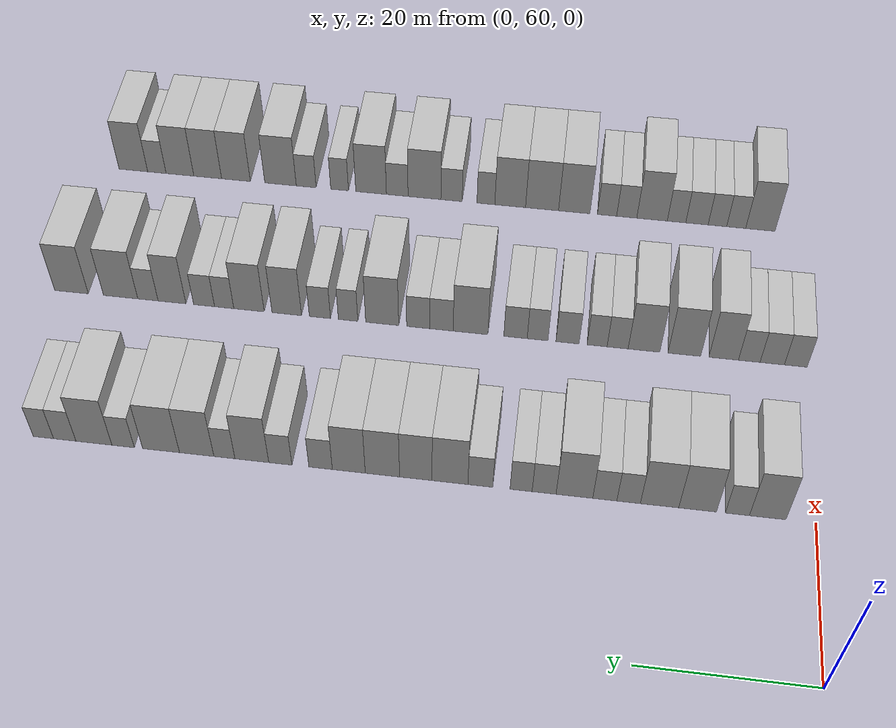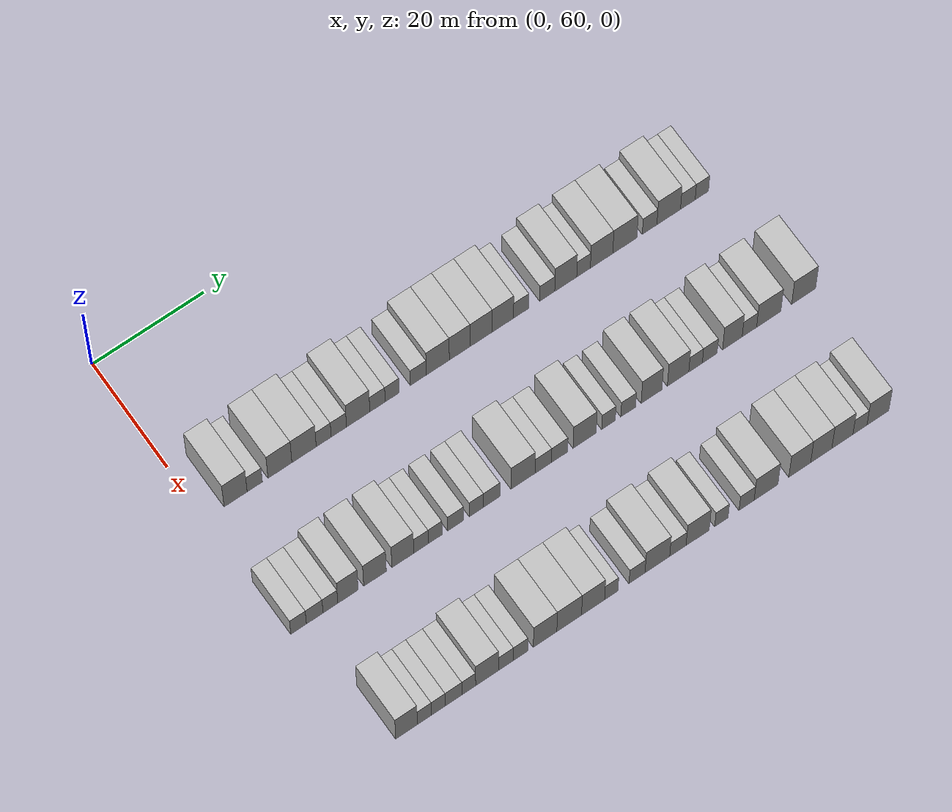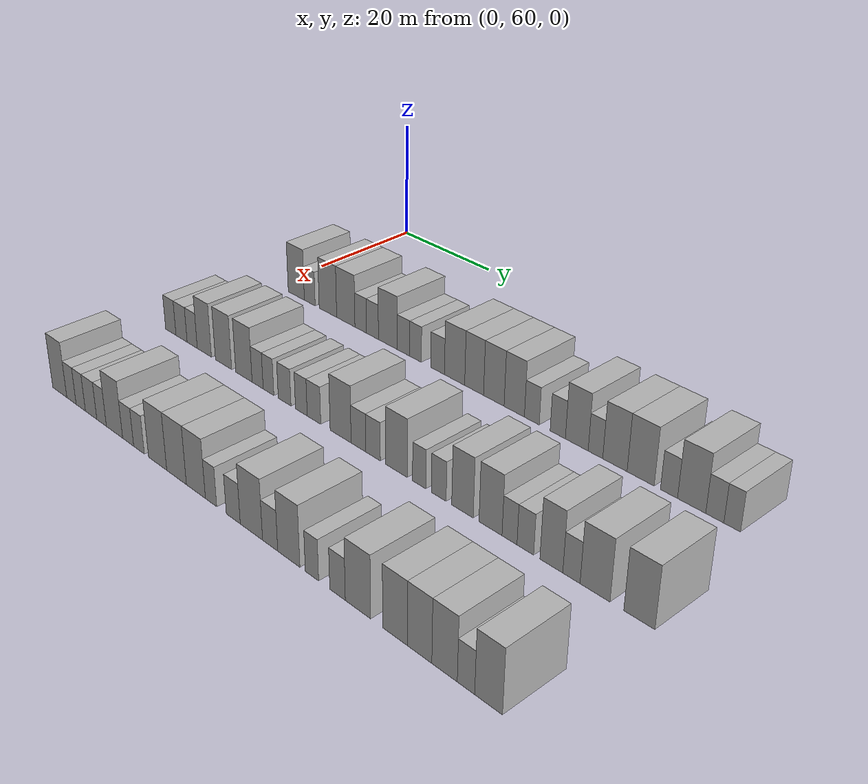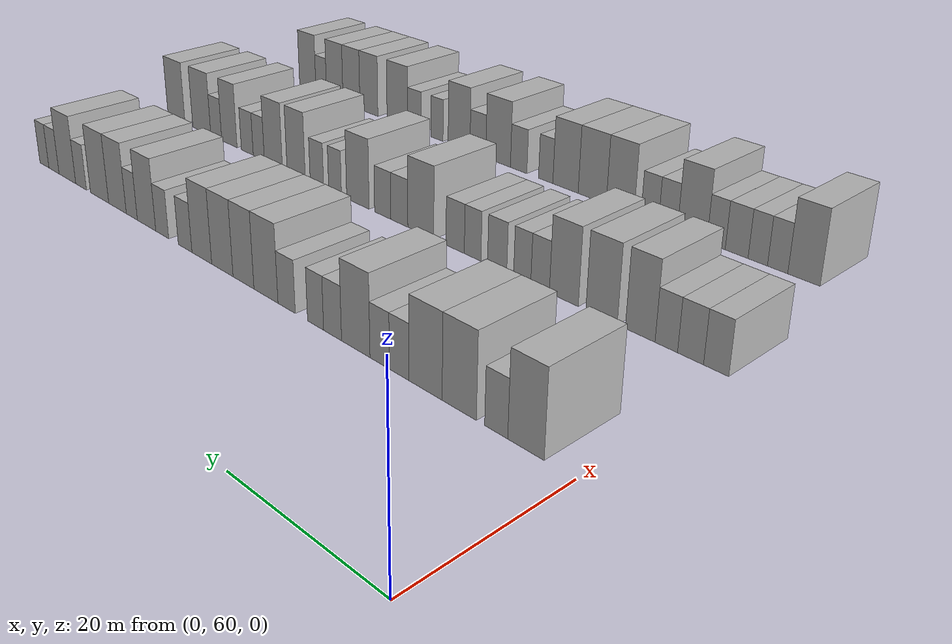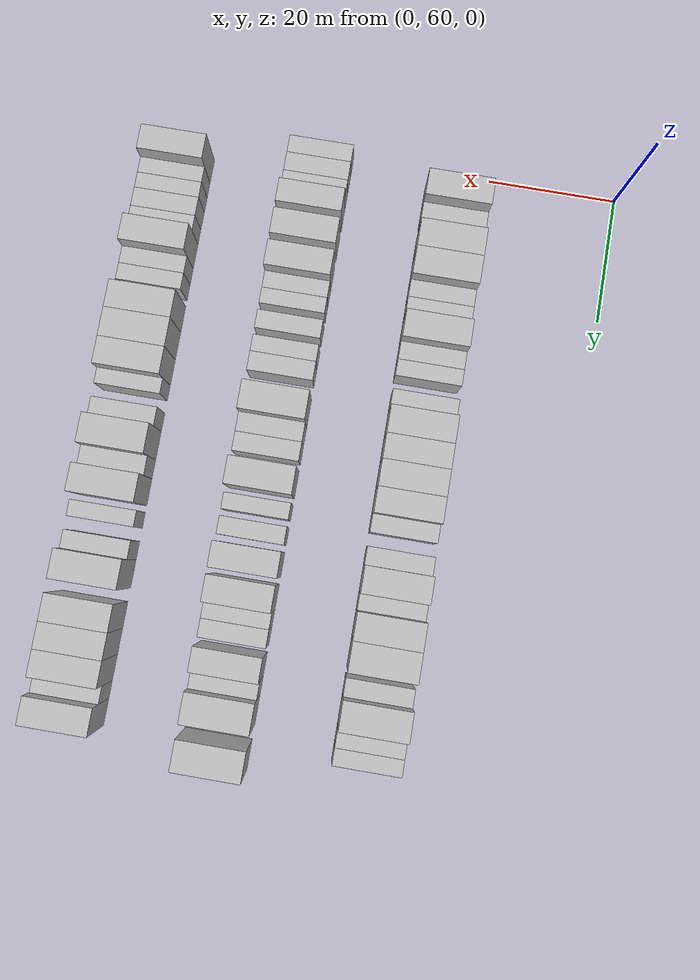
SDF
<sdf version="1.6">
 <world name="default">
  <model name="building_69">
   <static>1</static>
   <pose>25.0000 65.4804 0 0.000000 0.000000 0.000000</pose>
   <link name="link">
    <pose>0 0 4.50 0 0 0</pose>
    <collision name="collision"><geometry><box><size>10.0000 4.1131 9.0000</size></box></geometry></collision>
    <visual name="visual">
     <cast_shadows>0</cast_shadows>
     <geometry><box><size>10.0000 4.1131 9.0000</size></box></geometry>
     <material>
      <script>
       <uri>model://HANNAS_wall/materials/scripts</uri>
       <uri>model://HANNAS_wall/materials/textures</uri>
       <name>vrc/HANNAS_wall</name>
      </script>
     </material>
    </visual>
   </link>
  </model>
  <model name="building_70">
   <static>1</static>
   <pose>25.0000 68.8967 0 0.000000 0.000000 0.000000</pose>
   <link name="link">
    <pose>0 0 3.00 0 0 0</pose>
    <collision name="collision"><geometry><box><size>10.0000 2.7195 6.0000</size></box></geometry></collision>
    <visual name="visual">
     <cast_shadows>0</cast_shadows>
     <geometry><box><size>10.0000 2.7195 6.0000</size></box></geometry>
     <material>
      <script>
       <uri>model://HANNAS_wall/materials/scripts</uri>
       <uri>model://HANNAS_wall/materials/textures</uri>
       <name>vrc/HANNAS_wall</name>
      </script>
     </material>
    </visual>
   </link>
  </model>
  <model name="building_71">
   <static>1</static>
   <pose>25.0000 73.3955 0 0.000000 0.000000 0.000000</pose>
   <link name="link">
    <pose>0 0 4.50 0 0 0</pose>
    <collision name="collision"><geometry><box><size>10.0000 4.2781 9.0000</size></box></geometry></collision>
    <visual name="visual">
     <cast_shadows>0</cast_shadows>
     <geometry><box><size>10.0000 4.2781 9.0000</size></box></geometry>
     <material>
      <script>
       <uri>model://HANNAS_wall/materials/scripts</uri>
       <uri>model://HANNAS_wall/materials/textures</uri>
       <name>vrc/HANNAS_wall</name>
      </script>
     </material>
    </visual>
   </link>
  </model>
  <model name="building_72">
   <static>1</static>
   <pose>25.0000 77.7174 0 0.000000 0.000000 0.000000</pose>
   <link name="link">
    <pose>0 0 4.50 0 0 0</pose>
    <collision name="collision"><geometry><box><size>10.0000 4.3655 9.0000</size></box></geometry></collision>
    <visual name="visual">
     <cast_shadows>0</cast_shadows>
     <geometry><box><size>10.0000 4.3655 9.0000</size></box></geometry>
     <material>
      <script>
       <uri>model://HANNAS_wall/materials/scripts</uri>
       <uri>model://HANNAS_wall/materials/textures</uri>
       <name>vrc/HANNAS_wall</name>
      </script>
     </material>
    </visual>
   </link>
  </model>
  <model name="building_73">
   <static>1</static>
   <pose>25.0000 81.2436 0 0.000000 0.000000 0.000000</pose>
   <link name="link">
    <pose>0 0 3.00 0 0 0</pose>
    <collision name="collision"><geometry><box><size>10.0000 2.6871 6.0000</size></box></geometry></collision>
    <visual name="visual">
     <cast_shadows>0</cast_shadows>
     <geometry><box><size>10.0000 2.6871 6.0000</size></box></geometry>
     <material>
      <script>
       <uri>model://HANNAS_wall/materials/scripts</uri>
       <uri>model://HANNAS_wall/materials/textures</uri>
       <name>vrc/HANNAS_wall</name>
      </script>
     </material>
    </visual>
   </link>
  </model>
  <model name="building_74">
   <static>1</static>
   <pose>25.0000 83.9647 0 0.000000 0.000000 0.000000</pose>
   <link name="link">
    <pose>0 0 3.00 0 0 0</pose>
    <collision name="collision"><geometry><box><size>10.0000 2.7551 6.0000</size></box></geometry></collision>
    <visual name="visual">
     <cast_shadows>0</cast_shadows>
     <geometry><box><size>10.0000 2.7551 6.0000</size></box></geometry>
     <material>
      <script>
       <uri>model://HANNAS_wall/materials/scripts</uri>
       <uri>model://HANNAS_wall/materials/textures</uri>
       <name>vrc/HANNAS_wall</name>
      </script>
     </material>
    </visual>
   </link>
  </model>
  <model name="building_75">
   <static>1</static>
   <pose>25.0000 87.4468 0 0.000000 0.000000 0.000000</pose>
   <link name="link">
    <pose>0 0 4.50 0 0 0</pose>
    <collision name="collision"><geometry><box><size>10.0000 4.2091 9.0000</size></box></geometry></collision>
    <visual name="visual">
     <cast_shadows>0</cast_shadows>
     <geometry><box><size>10.0000 4.2091 9.0000</size></box></geometry>
     <material>
      <script>
       <uri>model://HANNAS_wall/materials/scripts</uri>
       <uri>model://HANNAS_wall/materials/textures</uri>
       <name>vrc/HANNAS_wall</name>
      </script>
     </material>
    </visual>
   </link>
  </model>
  <model name="building_76">
   <static>1</static>
   <pose>25.0000 90.9316 0 0.000000 0.000000 0.000000</pose>
   <link name="link">
    <pose>0 0 3.00 0 0 0</pose>
    <collision name="collision"><geometry><box><size>10.0000 2.7605 6.0000</size></box></geometry></collision>
    <visual name="visual">
     <cast_shadows>0</cast_shadows>
     <geometry><box><size>10.0000 2.7605 6.0000</size></box></geometry>
     <material>
      <script>
       <uri>model://HANNAS_wall/materials/scripts</uri>
       <uri>model://HANNAS_wall/materials/textures</uri>
       <name>vrc/HANNAS_wall</name>
      </script>
     </material>
    </visual>
   </link>
  </model>
  <model name="building_77">
   <static>1</static>
   <pose>25.0000 93.5852 0 0.000000 0.000000 0.000000</pose>
   <link name="link">
    <pose>0 0 3.00 0 0 0</pose>
    <collision name="collision"><geometry><box><size>10.0000 2.5466 6.0000</size></box></geometry></collision>
    <visual name="visual">
     <cast_shadows>0</cast_shadows>
     <geometry><box><size>10.0000 2.5466 6.0000</size></box></geometry>
     <material>
      <script>
       <uri>model://HANNAS_wall/materials/scripts</uri>
       <uri>model://HANNAS_wall/materials/textures</uri>
       <name>vrc/HANNAS_wall</name>
      </script>
     </material>
    </visual>
   </link>
  </model>
  <model name="building_78">
   <static>1</static>
   <pose>25.0000 98.3024 0 0.000000 0.000000 0.000000</pose>
   <link name="link">
    <pose>0 0 3.00 0 0 0</pose>
    <collision name="collision"><geometry><box><size>10.0000 2.8877 6.0000</size></box></geometry></collision>
    <visual name="visual">
     <cast_shadows>0</cast_shadows>
     <geometry><box><size>10.0000 2.8877 6.0000</size></box></geometry>
     <material>
      <script>
       <uri>model://HANNAS_wall/materials/scripts</uri>
       <uri>model://HANNAS_wall/materials/textures</uri>
       <name>vrc/HANNAS_wall</name>
      </script>
     </material>
    </visual>
   </link>
  </model>
  <model name="building_79">
   <static>1</static>
   <pose>25.0000 101.8312 0 0.000000 0.000000 0.000000</pose>
   <link name="link">
    <pose>0 0 4.50 0 0 0</pose>
    <collision name="collision"><geometry><box><size>10.0000 4.1699 9.0000</size></box></geometry></collision>
    <visual name="visual">
     <cast_shadows>0</cast_shadows>
     <geometry><box><size>10.0000 4.1699 9.0000</size></box></geometry>
     <material>
      <script>
       <uri>model://HANNAS_wall/materials/scripts</uri>
       <uri>model://HANNAS_wall/materials/textures</uri>
       <name>vrc/HANNAS_wall</name>
      </script>
     </material>
    </visual>
   </link>
  </model>
  <model name="building_80">
   <static>1</static>
   <pose>25.0000 105.8096 0 0.000000 0.000000 0.000000</pose>
   <link name="link">
    <pose>0 0 4.50 0 0 0</pose>
    <collision name="collision"><geometry><box><size>10.0000 3.7871 9.0000</size></box></geometry></collision>
    <visual name="visual">
     <cast_shadows>0</cast_shadows>
     <geometry><box><size>10.0000 3.7871 9.0000</size></box></geometry>
     <material>
      <script>
       <uri>model://HANNAS_wall/materials/scripts</uri>
       <uri>model://HANNAS_wall/materials/textures</uri>
       <name>vrc/HANNAS_wall</name>
      </script>
     </material>
    </visual>
   </link>
  </model>
  <model name="building_81">
   <static>1</static>
   <pose>25.0000 109.7176 0 0.000000 0.000000 0.000000</pose>
   <link name="link">
    <pose>0 0 4.50 0 0 0</pose>
    <collision name="collision"><geometry><box><size>10.0000 4.0288 9.0000</size></box></geometry></collision>
    <visual name="visual">
     <cast_shadows>0</cast_shadows>
     <geometry><box><size>10.0000 4.0288 9.0000</size></box></geometry>
     <material>
      <script>
       <uri>model://HANNAS_wall/materials/scripts</uri>
       <uri>model://HANNAS_wall/materials/textures</uri>
       <name>vrc/HANNAS_wall</name>
      </script>
     </material>
    </visual>
   </link>
  </model>
  <model name="building_82">
   <static>1</static>
   <pose>25.0000 113.6681 0 0.000000 0.000000 0.000000</pose>
   <link name="link">
    <pose>0 0 4.50 0 0 0</pose>
    <collision name="collision"><geometry><box><size>10.0000 3.8722 9.0000</size></box></geometry></collision>
    <visual name="visual">
     <cast_shadows>0</cast_shadows>
     <geometry><box><size>10.0000 3.8722 9.0000</size></box></geometry>
     <material>
      <script>
       <uri>model://HANNAS_wall/materials/scripts</uri>
       <uri>model://HANNAS_wall/materials/textures</uri>
       <name>vrc/HANNAS_wall</name>
      </script>
     </material>
    </visual>
   </link>
  </model>
  <model name="building_83">
   <static>1</static>
   <pose>25.0000 116.9877 0 0.000000 0.000000 0.000000</pose>
   <link name="link">
    <pose>0 0 3.00 0 0 0</pose>
    <collision name="collision"><geometry><box><size>10.0000 2.7671 6.0000</size></box></geometry></collision>
    <visual name="visual">
     <cast_shadows>0</cast_shadows>
     <geometry><box><size>10.0000 2.7671 6.0000</size></box></geometry>
     <material>
      <script>
       <uri>model://HANNAS_wall/materials/scripts</uri>
       <uri>model://HANNAS_wall/materials/textures</uri>
       <name>vrc/HANNAS_wall</name>
      </script>
     </material>
    </visual>
   </link>
  </model>
  <model name="building_84">
   <static>1</static>
   <pose>25.0000 121.7481 0 0.000000 0.000000 0.000000</pose>
   <link name="link">
    <pose>0 0 3.00 0 0 0</pose>
    <collision name="collision"><geometry><box><size>10.0000 2.7537 6.0000</size></box></geometry></collision>
    <visual name="visual">
     <cast_shadows>0</cast_shadows>
     <geometry><box><size>10.0000 2.7537 6.0000</size></box></geometry>
     <material>
      <script>
       <uri>model://HANNAS_wall/materials/scripts</uri>
       <uri>model://HANNAS_wall/materials/textures</uri>
       <name>vrc/HANNAS_wall</name>
      </script>
     </material>
    </visual>
   </link>
  </model>
  <model name="building_85">
   <static>1</static>
   <pose>25.0000 125.1392 0 0.000000 0.000000 0.000000</pose>
   <link name="link">
    <pose>0 0 4.50 0 0 0</pose>
    <collision name="collision"><geometry><box><size>10.0000 4.0284 9.0000</size></box></geometry></collision>
    <visual name="visual">
     <cast_shadows>0</cast_shadows>
     <geometry><box><size>10.0000 4.0284 9.0000</size></box></geometry>
     <material>
      <script>
       <uri>model://HANNAS_wall/materials/scripts</uri>
       <uri>model://HANNAS_wall/materials/textures</uri>
       <name>vrc/HANNAS_wall</name>
      </script>
     </material>
    </visual>
   </link>
  </model>
  <model name="building_86">
   <static>1</static>
   <pose>25.0000 128.4091 0 0.000000 0.000000 0.000000</pose>
   <link name="link">
    <pose>0 0 3.00 0 0 0</pose>
    <collision name="collision"><geometry><box><size>10.0000 2.5114 6.0000</size></box></geometry></collision>
    <visual name="visual">
     <cast_shadows>0</cast_shadows>
     <geometry><box><size>10.0000 2.5114 6.0000</size></box></geometry>
     <material>
      <script>
       <uri>model://HANNAS_wall/materials/scripts</uri>
       <uri>model://HANNAS_wall/materials/textures</uri>
       <name>vrc/HANNAS_wall</name>
      </script>
     </material>
    </visual>
   </link>
  </model>
  <model name="building_87">
   <static>1</static>
   <pose>25.0000 131.7208 0 0.000000 0.000000 0.000000</pose>
   <link name="link">
    <pose>0 0 4.50 0 0 0</pose>
    <collision name="collision"><geometry><box><size>10.0000 4.1119 9.0000</size></box></geometry></collision>
    <visual name="visual">
     <cast_shadows>0</cast_shadows>
     <geometry><box><size>10.0000 4.1119 9.0000</size></box></geometry>
     <material>
      <script>
       <uri>model://HANNAS_wall/materials/scripts</uri>
       <uri>model://HANNAS_wall/materials/textures</uri>
       <name>vrc/HANNAS_wall</name>
      </script>
     </material>
    </visual>
   </link>
  </model>
  <model name="building_88">
   <static>1</static>
   <pose>25.0000 135.9934 0 0.000000 0.000000 0.000000</pose>
   <link name="link">
    <pose>0 0 4.50 0 0 0</pose>
    <collision name="collision"><geometry><box><size>10.0000 4.4335 9.0000</size></box></geometry></collision>
    <visual name="visual">
     <cast_shadows>0</cast_shadows>
     <geometry><box><size>10.0000 4.4335 9.0000</size></box></geometry>
     <material>
      <script>
       <uri>model://HANNAS_wall/materials/scripts</uri>
       <uri>model://HANNAS_wall/materials/textures</uri>
       <name>vrc/HANNAS_wall</name>
      </script>
     </material>
    </visual>
   </link>
  </model>
  <model name="building_89">
   <static>1</static>
   <pose>25.0000 140.5621 0 0.000000 0.000000 0.000000</pose>
   <link name="link">
    <pose>0 0 3.00 0 0 0</pose>
    <collision name="collision"><geometry><box><size>10.0000 2.7039 6.0000</size></box></geometry></collision>
    <visual name="visual">
     <cast_shadows>0</cast_shadows>
     <geometry><box><size>10.0000 2.7039 6.0000</size></box></geometry>
     <material>
      <script>
       <uri>model://HANNAS_wall/materials/scripts</uri>
       <uri>model://HANNAS_wall/materials/textures</uri>
       <name>vrc/HANNAS_wall</name>
      </script>
     </material>
    </visual>
   </link>
  </model>
  <model name="building_90">
   <static>1</static>
   <pose>25.0000 144.0928 0 0.000000 0.000000 0.000000</pose>
   <link name="link">
    <pose>0 0 4.50 0 0 0</pose>
    <collision name="collision"><geometry><box><size>10.0000 4.3573 9.0000</size></box></geometry></collision>
    <visual name="visual">
     <cast_shadows>0</cast_shadows>
     <geometry><box><size>10.0000 4.3573 9.0000</size></box></geometry>
     <material>
      <script>
       <uri>model://HANNAS_wall/materials/scripts</uri>
       <uri>model://HANNAS_wall/materials/textures</uri>
       <name>vrc/HANNAS_wall</name>
      </script>
     </material>
    </visual>
   </link>
  </model>
  <model name="building_91">
   <static>1</static>
   <pose>25.0000 147.6331 0 0.000000 0.000000 0.000000</pose>
   <link name="link">
    <pose>0 0 3.00 0 0 0</pose>
    <collision name="collision"><geometry><box><size>10.0000 2.7234 6.0000</size></box></geometry></collision>
    <visual name="visual">
     <cast_shadows>0</cast_shadows>
     <geometry><box><size>10.0000 2.7234 6.0000</size></box></geometry>
     <material>
      <script>
       <uri>model://HANNAS_wall/materials/scripts</uri>
       <uri>model://HANNAS_wall/materials/textures</uri>
       <name>vrc/HANNAS_wall</name>
      </script>
     </material>
    </visual>
   </link>
  </model>
  <model name="building_92">
   <static>1</static>
   <pose>25.0000 150.2247 0 0.000000 0.000000 0.000000</pose>
   <link name="link">
    <pose>0 0 3.00 0 0 0</pose>
    <collision name="collision"><geometry><box><size>10.0000 2.4598 6.0000</size></box></geometry></collision>
    <visual name="visual">
     <cast_shadows>0</cast_shadows>
     <geometry><box><size>10.0000 2.4598 6.0000</size></box></geometry>
     <material>
      <script>
       <uri>model://HANNAS_wall/materials/scripts</uri>
       <uri>model://HANNAS_wall/materials/textures</uri>
       <name>vrc/HANNAS_wall</name>
      </script>
     </material>
    </visual>
   </link>
  </model>
  <model name="building_192">
   <static>1</static>
   <pose>47.0000 61.7141 0 0.000000 0.000000 0.000000</pose>
   <link name="link">
    <pose>0 0 3.00 0 0 0</pose>
    <collision name="collision"><geometry><box><size>10.0000 2.7689 6.0000</size></box></geometry></collision>
    <visual name="visual">
     <cast_shadows>0</cast_shadows>
     <geometry><box><size>10.0000 2.7689 6.0000</size></box></geometry>
     <material>
      <script>
       <uri>model://HANNAS_wall/materials/scripts</uri>
       <uri>model://HANNAS_wall/materials/textures</uri>
       <name>vrc/HANNAS_wall</name>
      </script>
     </material>
    </visual>
   </link>
  </model>
  <model name="building_193">
   <static>1</static>
   <pose>47.0000 64.5737 0 0.000000 0.000000 0.000000</pose>
   <link name="link">
    <pose>0 0 3.00 0 0 0</pose>
    <collision name="collision"><geometry><box><size>10.0000 2.9502 6.0000</size></box></geometry></collision>
    <visual name="visual">
     <cast_shadows>0</cast_shadows>
     <geometry><box><size>10.0000 2.9502 6.0000</size></box></geometry>
     <material>
      <script>
       <uri>model://HANNAS_wall/materials/scripts</uri>
       <uri>model://HANNAS_wall/materials/textures</uri>
       <name>vrc/HANNAS_wall</name>
      </script>
     </material>
    </visual>
   </link>
  </model>
  <model name="building_194">
   <static>1</static>
   <pose>47.0000 67.3678 0 0.000000 0.000000 0.000000</pose>
   <link name="link">
    <pose>0 0 3.00 0 0 0</pose>
    <collision name="collision"><geometry><box><size>10.0000 2.6379 6.0000</size></box></geometry></collision>
    <visual name="visual">
     <cast_shadows>0</cast_shadows>
     <geometry><box><size>10.0000 2.6379 6.0000</size></box></geometry>
     <material>
      <script>
       <uri>model://HANNAS_wall/materials/scripts</uri>
       <uri>model://HANNAS_wall/materials/textures</uri>
       <name>vrc/HANNAS_wall</name>
      </script>
     </material>
    </visual>
   </link>
  </model>
  <model name="building_195">
   <static>1</static>
   <pose>47.0000 70.4929 0 0.000000 0.000000 0.000000</pose>
   <link name="link">
    <pose>0 0 4.50 0 0 0</pose>
    <collision name="collision"><geometry><box><size>10.0000 3.6125 9.0000</size></box></geometry></collision>
    <visual name="visual">
     <cast_shadows>0</cast_shadows>
     <geometry><box><size>10.0000 3.6125 9.0000</size></box></geometry>
     <material>
      <script>
       <uri>model://HANNAS_wall/materials/scripts</uri>
       <uri>model://HANNAS_wall/materials/textures</uri>
       <name>vrc/HANNAS_wall</name>
      </script>
     </material>
    </visual>
   </link>
  </model>
  <model name="building_196">
   <static>1</static>
   <pose>47.0000 75.3109 0 0.000000 0.000000 0.000000</pose>
   <link name="link">
    <pose>0 0 4.50 0 0 0</pose>
    <collision name="collision"><geometry><box><size>10.0000 4.0234 9.0000</size></box></geometry></collision>
    <visual name="visual">
     <cast_shadows>0</cast_shadows>
     <geometry><box><size>10.0000 4.0234 9.0000</size></box></geometry>
     <material>
      <script>
       <uri>model://HANNAS_wall/materials/scripts</uri>
       <uri>model://HANNAS_wall/materials/textures</uri>
       <name>vrc/HANNAS_wall</name>
      </script>
     </material>
    </visual>
   </link>
  </model>
  <model name="building_197">
   <static>1</static>
   <pose>47.0000 80.2809 0 0.000000 0.000000 0.000000</pose>
   <link name="link">
    <pose>0 0 4.50 0 0 0</pose>
    <collision name="collision"><geometry><box><size>10.0000 3.9167 9.0000</size></box></geometry></collision>
    <visual name="visual">
     <cast_shadows>0</cast_shadows>
     <geometry><box><size>10.0000 3.9167 9.0000</size></box></geometry>
     <material>
      <script>
       <uri>model://HANNAS_wall/materials/scripts</uri>
       <uri>model://HANNAS_wall/materials/textures</uri>
       <name>vrc/HANNAS_wall</name>
      </script>
     </material>
    </visual>
   </link>
  </model>
  <model name="building_198">
   <static>1</static>
   <pose>47.0000 83.5421 0 0.000000 0.000000 0.000000</pose>
   <link name="link">
    <pose>0 0 3.00 0 0 0</pose>
    <collision name="collision"><geometry><box><size>10.0000 2.6057 6.0000</size></box></geometry></collision>
    <visual name="visual">
     <cast_shadows>0</cast_shadows>
     <geometry><box><size>10.0000 2.6057 6.0000</size></box></geometry>
     <material>
      <script>
       <uri>model://HANNAS_wall/materials/scripts</uri>
       <uri>model://HANNAS_wall/materials/textures</uri>
       <name>vrc/HANNAS_wall</name>
      </script>
     </material>
    </visual>
   </link>
  </model>
  <model name="building_199">
   <static>1</static>
   <pose>47.0000 86.0800 0 0.000000 0.000000 0.000000</pose>
   <link name="link">
    <pose>0 0 3.00 0 0 0</pose>
    <collision name="collision"><geometry><box><size>10.0000 2.4700 6.0000</size></box></geometry></collision>
    <visual name="visual">
     <cast_shadows>0</cast_shadows>
     <geometry><box><size>10.0000 2.4700 6.0000</size></box></geometry>
     <material>
      <script>
       <uri>model://HANNAS_wall/materials/scripts</uri>
       <uri>model://HANNAS_wall/materials/textures</uri>
       <name>vrc/HANNAS_wall</name>
      </script>
     </material>
    </visual>
   </link>
  </model>
  <model name="building_200">
   <static>1</static>
   <pose>47.0000 89.7513 0 0.000000 0.000000 0.000000</pose>
   <link name="link">
    <pose>0 0 3.00 0 0 0</pose>
    <collision name="collision"><geometry><box><size>10.0000 2.8726 6.0000</size></box></geometry></collision>
    <visual name="visual">
     <cast_shadows>0</cast_shadows>
     <geometry><box><size>10.0000 2.8726 6.0000</size></box></geometry>
     <material>
      <script>
       <uri>model://HANNAS_wall/materials/scripts</uri>
       <uri>model://HANNAS_wall/materials/textures</uri>
       <name>vrc/HANNAS_wall</name>
      </script>
     </material>
    </visual>
   </link>
  </model>
  <model name="building_201">
   <static>1</static>
   <pose>47.0000 93.4786 0 0.000000 0.000000 0.000000</pose>
   <link name="link">
    <pose>0 0 3.00 0 0 0</pose>
    <collision name="collision"><geometry><box><size>10.0000 2.5819 6.0000</size></box></geometry></collision>
    <visual name="visual">
     <cast_shadows>0</cast_shadows>
     <geometry><box><size>10.0000 2.5819 6.0000</size></box></geometry>
     <material>
      <script>
       <uri>model://HANNAS_wall/materials/scripts</uri>
       <uri>model://HANNAS_wall/materials/textures</uri>
       <name>vrc/HANNAS_wall</name>
      </script>
     </material>
    </visual>
   </link>
  </model>
  <model name="building_202">
   <static>1</static>
   <pose>47.0000 96.2320 0 0.000000 0.000000 0.000000</pose>
   <link name="link">
    <pose>0 0 3.00 0 0 0</pose>
    <collision name="collision"><geometry><box><size>10.0000 2.9250 6.0000</size></box></geometry></collision>
    <visual name="visual">
     <cast_shadows>0</cast_shadows>
     <geometry><box><size>10.0000 2.9250 6.0000</size></box></geometry>
     <material>
      <script>
       <uri>model://HANNAS_wall/materials/scripts</uri>
       <uri>model://HANNAS_wall/materials/textures</uri>
       <name>vrc/HANNAS_wall</name>
      </script>
     </material>
    </visual>
   </link>
  </model>
  <model name="building_203">
   <static>1</static>
   <pose>47.0000 101.8746 0 0.000000 0.000000 0.000000</pose>
   <link name="link">
    <pose>0 0 4.50 0 0 0</pose>
    <collision name="collision"><geometry><box><size>10.0000 4.3601 9.0000</size></box></geometry></collision>
    <visual name="visual">
     <cast_shadows>0</cast_shadows>
     <geometry><box><size>10.0000 4.3601 9.0000</size></box></geometry>
     <material>
      <script>
       <uri>model://HANNAS_wall/materials/scripts</uri>
       <uri>model://HANNAS_wall/materials/textures</uri>
       <name>vrc/HANNAS_wall</name>
      </script>
     </material>
    </visual>
   </link>
  </model>
  <model name="building_204">
   <static>1</static>
   <pose>47.0000 105.5355 0 0.000000 0.000000 0.000000</pose>
   <link name="link">
    <pose>0 0 3.00 0 0 0</pose>
    <collision name="collision"><geometry><box><size>10.0000 2.9616 6.0000</size></box></geometry></collision>
    <visual name="visual">
     <cast_shadows>0</cast_shadows>
     <geometry><box><size>10.0000 2.9616 6.0000</size></box></geometry>
     <material>
      <script>
       <uri>model://HANNAS_wall/materials/scripts</uri>
       <uri>model://HANNAS_wall/materials/textures</uri>
       <name>vrc/HANNAS_wall</name>
      </script>
     </material>
    </visual>
   </link>
  </model>
  <model name="building_205">
   <static>1</static>
   <pose>47.0000 108.4718 0 0.000000 0.000000 0.000000</pose>
   <link name="link">
    <pose>0 0 3.00 0 0 0</pose>
    <collision name="collision"><geometry><box><size>10.0000 2.9110 6.0000</size></box></geometry></collision>
    <visual name="visual">
     <cast_shadows>0</cast_shadows>
     <geometry><box><size>10.0000 2.9110 6.0000</size></box></geometry>
     <material>
      <script>
       <uri>model://HANNAS_wall/materials/scripts</uri>
       <uri>model://HANNAS_wall/materials/textures</uri>
       <name>vrc/HANNAS_wall</name>
      </script>
     </material>
    </visual>
   </link>
  </model>
  <model name="building_206">
   <static>1</static>
   <pose>47.0000 113.0243 0 0.000000 0.000000 0.000000</pose>
   <link name="link">
    <pose>0 0 4.50 0 0 0</pose>
    <collision name="collision"><geometry><box><size>10.0000 4.1940 9.0000</size></box></geometry></collision>
    <visual name="visual">
     <cast_shadows>0</cast_shadows>
     <geometry><box><size>10.0000 4.1940 9.0000</size></box></geometry>
     <material>
      <script>
       <uri>model://HANNAS_wall/materials/scripts</uri>
       <uri>model://HANNAS_wall/materials/textures</uri>
       <name>vrc/HANNAS_wall</name>
      </script>
     </material>
    </visual>
   </link>
  </model>
  <model name="building_207">
   <static>1</static>
   <pose>47.0000 117.3621 0 0.000000 0.000000 0.000000</pose>
   <link name="link">
    <pose>0 0 3.00 0 0 0</pose>
    <collision name="collision"><geometry><box><size>10.0000 2.4817 6.0000</size></box></geometry></collision>
    <visual name="visual">
     <cast_shadows>0</cast_shadows>
     <geometry><box><size>10.0000 2.4817 6.0000</size></box></geometry>
     <material>
      <script>
       <uri>model://HANNAS_wall/materials/scripts</uri>
       <uri>model://HANNAS_wall/materials/textures</uri>
       <name>vrc/HANNAS_wall</name>
      </script>
     </material>
    </visual>
   </link>
  </model>
  <model name="building_208">
   <static>1</static>
   <pose>47.0000 120.9545 0 0.000000 0.000000 0.000000</pose>
   <link name="link">
    <pose>0 0 3.00 0 0 0</pose>
    <collision name="collision"><geometry><box><size>10.0000 2.7032 6.0000</size></box></geometry></collision>
    <visual name="visual">
     <cast_shadows>0</cast_shadows>
     <geometry><box><size>10.0000 2.7032 6.0000</size></box></geometry>
     <material>
      <script>
       <uri>model://HANNAS_wall/materials/scripts</uri>
       <uri>model://HANNAS_wall/materials/textures</uri>
       <name>vrc/HANNAS_wall</name>
      </script>
     </material>
    </visual>
   </link>
  </model>
  <model name="building_209">
   <static>1</static>
   <pose>47.0000 125.2023 0 0.000000 0.000000 0.000000</pose>
   <link name="link">
    <pose>0 0 4.50 0 0 0</pose>
    <collision name="collision"><geometry><box><size>10.0000 3.7923 9.0000</size></box></geometry></collision>
    <visual name="visual">
     <cast_shadows>0</cast_shadows>
     <geometry><box><size>10.0000 3.7923 9.0000</size></box></geometry>
     <material>
      <script>
       <uri>model://HANNAS_wall/materials/scripts</uri>
       <uri>model://HANNAS_wall/materials/textures</uri>
       <name>vrc/HANNAS_wall</name>
      </script>
     </material>
    </visual>
   </link>
  </model>
  <model name="building_210">
   <static>1</static>
   <pose>47.0000 130.0582 0 0.000000 0.000000 0.000000</pose>
   <link name="link">
    <pose>0 0 4.50 0 0 0</pose>
    <collision name="collision"><geometry><box><size>10.0000 3.9194 9.0000</size></box></geometry></collision>
    <visual name="visual">
     <cast_shadows>0</cast_shadows>
     <geometry><box><size>10.0000 3.9194 9.0000</size></box></geometry>
     <material>
      <script>
       <uri>model://HANNAS_wall/materials/scripts</uri>
       <uri>model://HANNAS_wall/materials/textures</uri>
       <name>vrc/HANNAS_wall</name>
      </script>
     </material>
    </visual>
   </link>
  </model>
  <model name="building_211">
   <static>1</static>
   <pose>47.0000 133.2602 0 0.000000 0.000000 0.000000</pose>
   <link name="link">
    <pose>0 0 3.00 0 0 0</pose>
    <collision name="collision"><geometry><box><size>10.0000 2.4846 6.0000</size></box></geometry></collision>
    <visual name="visual">
     <cast_shadows>0</cast_shadows>
     <geometry><box><size>10.0000 2.4846 6.0000</size></box></geometry>
     <material>
      <script>
       <uri>model://HANNAS_wall/materials/scripts</uri>
       <uri>model://HANNAS_wall/materials/textures</uri>
       <name>vrc/HANNAS_wall</name>
      </script>
     </material>
    </visual>
   </link>
  </model>
  <model name="building_212">
   <static>1</static>
   <pose>47.0000 135.8570 0 0.000000 0.000000 0.000000</pose>
   <link name="link">
    <pose>0 0 3.00 0 0 0</pose>
    <collision name="collision"><geometry><box><size>10.0000 2.7092 6.0000</size></box></geometry></collision>
    <visual name="visual">
     <cast_shadows>0</cast_shadows>
     <geometry><box><size>10.0000 2.7092 6.0000</size></box></geometry>
     <material>
      <script>
       <uri>model://HANNAS_wall/materials/scripts</uri>
       <uri>model://HANNAS_wall/materials/textures</uri>
       <name>vrc/HANNAS_wall</name>
      </script>
     </material>
    </visual>
   </link>
  </model>
  <model name="building_213">
   <static>1</static>
   <pose>47.0000 140.0168 0 0.000000 0.000000 0.000000</pose>
   <link name="link">
    <pose>0 0 4.50 0 0 0</pose>
    <collision name="collision"><geometry><box><size>10.0000 3.6104 9.0000</size></box></geometry></collision>
    <visual name="visual">
     <cast_shadows>0</cast_shadows>
     <geometry><box><size>10.0000 3.6104 9.0000</size></box></geometry>
     <material>
      <script>
       <uri>model://HANNAS_wall/materials/scripts</uri>
       <uri>model://HANNAS_wall/materials/textures</uri>
       <name>vrc/HANNAS_wall</name>
      </script>
     </material>
    </visual>
   </link>
  </model>
  <model name="building_214">
   <static>1</static>
   <pose>47.0000 143.1481 0 0.000000 0.000000 0.000000</pose>
   <link name="link">
    <pose>0 0 3.00 0 0 0</pose>
    <collision name="collision"><geometry><box><size>10.0000 2.6522 6.0000</size></box></geometry></collision>
    <visual name="visual">
     <cast_shadows>0</cast_shadows>
     <geometry><box><size>10.0000 2.6522 6.0000</size></box></geometry>
     <material>
      <script>
       <uri>model://HANNAS_wall/materials/scripts</uri>
       <uri>model://HANNAS_wall/materials/textures</uri>
       <name>vrc/HANNAS_wall</name>
      </script>
     </material>
    </visual>
   </link>
  </model>
  <model name="building_215">
   <static>1</static>
   <pose>47.0000 146.7120 0 0.000000 0.000000 0.000000</pose>
   <link name="link">
    <pose>0 0 4.50 0 0 0</pose>
    <collision name="collision"><geometry><box><size>10.0000 4.4756 9.0000</size></box></geometry></collision>
    <visual name="visual">
     <cast_shadows>0</cast_shadows>
     <geometry><box><size>10.0000 4.4756 9.0000</size></box></geometry>
     <material>
      <script>
       <uri>model://HANNAS_wall/materials/scripts</uri>
       <uri>model://HANNAS_wall/materials/textures</uri>
       <name>vrc/HANNAS_wall</name>
      </script>
     </material>
    </visual>
   </link>
  </model>
  <model name="building_216">
   <static>1</static>
   <pose>47.0000 153.1598 0 0.000000 0.000000 0.000000</pose>
   <link name="link">
    <pose>0 0 4.50 0 0 0</pose>
    <collision name="collision"><geometry><box><size>10.0000 4.4201 9.0000</size></box></geometry></collision>
    <visual name="visual">
     <cast_shadows>0</cast_shadows>
     <geometry><box><size>10.0000 4.4201 9.0000</size></box></geometry>
     <material>
      <script>
       <uri>model://HANNAS_wall/materials/scripts</uri>
       <uri>model://HANNAS_wall/materials/textures</uri>
       <name>vrc/HANNAS_wall</name>
      </script>
     </material>
    </visual>
   </link>
  </model>
  <model name="building_315">
   <static>1</static>
   <pose>69.0000 65.7166 0 0.000000 0.000000 0.000000</pose>
   <link name="link">
    <pose>0 0 4.50 0 0 0</pose>
    <collision name="collision"><geometry><box><size>10.0000 3.8492 9.0000</size></box></geometry></collision>
    <visual name="visual">
     <cast_shadows>0</cast_shadows>
     <geometry><box><size>10.0000 3.8492 9.0000</size></box></geometry>
     <material>
      <script>
       <uri>model://HANNAS_wall/materials/scripts</uri>
       <uri>model://HANNAS_wall/materials/textures</uri>
       <name>vrc/HANNAS_wall</name>
      </script>
     </material>
    </visual>
   </link>
  </model>
  <model name="building_316">
   <static>1</static>
   <pose>69.0000 68.8883 0 0.000000 0.000000 0.000000</pose>
   <link name="link">
    <pose>0 0 3.00 0 0 0</pose>
    <collision name="collision"><geometry><box><size>10.0000 2.4943 6.0000</size></box></geometry></collision>
    <visual name="visual">
     <cast_shadows>0</cast_shadows>
     <geometry><box><size>10.0000 2.4943 6.0000</size></box></geometry>
     <material>
      <script>
       <uri>model://HANNAS_wall/materials/scripts</uri>
       <uri>model://HANNAS_wall/materials/textures</uri>
       <name>vrc/HANNAS_wall</name>
      </script>
     </material>
    </visual>
   </link>
  </model>
  <model name="building_317">
   <static>1</static>
   <pose>69.0000 71.3590 0 0.000000 0.000000 0.000000</pose>
   <link name="link">
    <pose>0 0 3.00 0 0 0</pose>
    <collision name="collision"><geometry><box><size>10.0000 2.4470 6.0000</size></box></geometry></collision>
    <visual name="visual">
     <cast_shadows>0</cast_shadows>
     <geometry><box><size>10.0000 2.4470 6.0000</size></box></geometry>
     <material>
      <script>
       <uri>model://HANNAS_wall/materials/scripts</uri>
       <uri>model://HANNAS_wall/materials/textures</uri>
       <name>vrc/HANNAS_wall</name>
      </script>
     </material>
    </visual>
   </link>
  </model>
  <model name="building_318">
   <static>1</static>
   <pose>69.0000 74.0572 0 0.000000 0.000000 0.000000</pose>
   <link name="link">
    <pose>0 0 3.00 0 0 0</pose>
    <collision name="collision"><geometry><box><size>10.0000 2.9494 6.0000</size></box></geometry></collision>
    <visual name="visual">
     <cast_shadows>0</cast_shadows>
     <geometry><box><size>10.0000 2.9494 6.0000</size></box></geometry>
     <material>
      <script>
       <uri>model://HANNAS_wall/materials/scripts</uri>
       <uri>model://HANNAS_wall/materials/textures</uri>
       <name>vrc/HANNAS_wall</name>
      </script>
     </material>
    </visual>
   </link>
  </model>
  <model name="building_319">
   <static>1</static>
   <pose>69.0000 76.7507 0 0.000000 0.000000 0.000000</pose>
   <link name="link">
    <pose>0 0 3.00 0 0 0</pose>
    <collision name="collision"><geometry><box><size>10.0000 2.4375 6.0000</size></box></geometry></collision>
    <visual name="visual">
     <cast_shadows>0</cast_shadows>
     <geometry><box><size>10.0000 2.4375 6.0000</size></box></geometry>
     <material>
      <script>
       <uri>model://HANNAS_wall/materials/scripts</uri>
       <uri>model://HANNAS_wall/materials/textures</uri>
       <name>vrc/HANNAS_wall</name>
      </script>
     </material>
    </visual>
   </link>
  </model>
  <model name="building_320">
   <static>1</static>
   <pose>69.0000 79.9959 0 0.000000 0.000000 0.000000</pose>
   <link name="link">
    <pose>0 0 4.50 0 0 0</pose>
    <collision name="collision"><geometry><box><size>10.0000 4.0529 9.0000</size></box></geometry></collision>
    <visual name="visual">
     <cast_shadows>0</cast_shadows>
     <geometry><box><size>10.0000 4.0529 9.0000</size></box></geometry>
     <material>
      <script>
       <uri>model://HANNAS_wall/materials/scripts</uri>
       <uri>model://HANNAS_wall/materials/textures</uri>
       <name>vrc/HANNAS_wall</name>
      </script>
     </material>
    </visual>
   </link>
  </model>
  <model name="building_321">
   <static>1</static>
   <pose>69.0000 83.3604 0 0.000000 0.000000 0.000000</pose>
   <link name="link">
    <pose>0 0 3.00 0 0 0</pose>
    <collision name="collision"><geometry><box><size>10.0000 2.6761 6.0000</size></box></geometry></collision>
    <visual name="visual">
     <cast_shadows>0</cast_shadows>
     <geometry><box><size>10.0000 2.6761 6.0000</size></box></geometry>
     <material>
      <script>
       <uri>model://HANNAS_wall/materials/scripts</uri>
       <uri>model://HANNAS_wall/materials/textures</uri>
       <name>vrc/HANNAS_wall</name>
      </script>
     </material>
    </visual>
   </link>
  </model>
  <model name="building_322">
   <static>1</static>
   <pose>69.0000 85.9786 0 0.000000 0.000000 0.000000</pose>
   <link name="link">
    <pose>0 0 3.00 0 0 0</pose>
    <collision name="collision"><geometry><box><size>10.0000 2.5602 6.0000</size></box></geometry></collision>
    <visual name="visual">
     <cast_shadows>0</cast_shadows>
     <geometry><box><size>10.0000 2.5602 6.0000</size></box></geometry>
     <material>
      <script>
       <uri>model://HANNAS_wall/materials/scripts</uri>
       <uri>model://HANNAS_wall/materials/textures</uri>
       <name>vrc/HANNAS_wall</name>
      </script>
     </material>
    </visual>
   </link>
  </model>
  <model name="building_323">
   <static>1</static>
   <pose>69.0000 90.3619 0 0.000000 0.000000 0.000000</pose>
   <link name="link">
    <pose>0 0 4.50 0 0 0</pose>
    <collision name="collision"><geometry><box><size>10.0000 4.2064 9.0000</size></box></geometry></collision>
    <visual name="visual">
     <cast_shadows>0</cast_shadows>
     <geometry><box><size>10.0000 4.2064 9.0000</size></box></geometry>
     <material>
      <script>
       <uri>model://HANNAS_wall/materials/scripts</uri>
       <uri>model://HANNAS_wall/materials/textures</uri>
       <name>vrc/HANNAS_wall</name>
      </script>
     </material>
    </visual>
   </link>
  </model>
  <model name="building_324">
   <static>1</static>
   <pose>69.0000 94.6767 0 0.000000 0.000000 0.000000</pose>
   <link name="link">
    <pose>0 0 4.50 0 0 0</pose>
    <collision name="collision"><geometry><box><size>10.0000 4.4231 9.0000</size></box></geometry></collision>
    <visual name="visual">
     <cast_shadows>0</cast_shadows>
     <geometry><box><size>10.0000 4.4231 9.0000</size></box></geometry>
     <material>
      <script>
       <uri>model://HANNAS_wall/materials/scripts</uri>
       <uri>model://HANNAS_wall/materials/textures</uri>
       <name>vrc/HANNAS_wall</name>
      </script>
     </material>
    </visual>
   </link>
  </model>
  <model name="building_325">
   <static>1</static>
   <pose>69.0000 98.9598 0 0.000000 0.000000 0.000000</pose>
   <link name="link">
    <pose>0 0 4.50 0 0 0</pose>
    <collision name="collision"><geometry><box><size>10.0000 4.1432 9.0000</size></box></geometry></collision>
    <visual name="visual">
     <cast_shadows>0</cast_shadows>
     <geometry><box><size>10.0000 4.1432 9.0000</size></box></geometry>
     <material>
      <script>
       <uri>model://HANNAS_wall/materials/scripts</uri>
       <uri>model://HANNAS_wall/materials/textures</uri>
       <name>vrc/HANNAS_wall</name>
      </script>
     </material>
    </visual>
   </link>
  </model>
  <model name="building_326">
   <static>1</static>
   <pose>69.0000 102.2349 0 0.000000 0.000000 0.000000</pose>
   <link name="link">
    <pose>0 0 3.00 0 0 0</pose>
    <collision name="collision"><geometry><box><size>10.0000 2.4071 6.0000</size></box></geometry></collision>
    <visual name="visual">
     <cast_shadows>0</cast_shadows>
     <geometry><box><size>10.0000 2.4071 6.0000</size></box></geometry>
     <material>
      <script>
       <uri>model://HANNAS_wall/materials/scripts</uri>
       <uri>model://HANNAS_wall/materials/textures</uri>
       <name>vrc/HANNAS_wall</name>
      </script>
     </material>
    </visual>
   </link>
  </model>
  <model name="building_327">
   <static>1</static>
   <pose>69.0000 106.8797 0 0.000000 0.000000 0.000000</pose>
   <link name="link">
    <pose>0 0 3.00 0 0 0</pose>
    <collision name="collision"><geometry><box><size>10.0000 2.8824 6.0000</size></box></geometry></collision>
    <visual name="visual">
     <cast_shadows>0</cast_shadows>
     <geometry><box><size>10.0000 2.8824 6.0000</size></box></geometry>
     <material>
      <script>
       <uri>model://HANNAS_wall/materials/scripts</uri>
       <uri>model://HANNAS_wall/materials/textures</uri>
       <name>vrc/HANNAS_wall</name>
      </script>
     </material>
    </visual>
   </link>
  </model>
  <model name="building_328">
   <static>1</static>
   <pose>69.0000 110.5525 0 0.000000 0.000000 0.000000</pose>
   <link name="link">
    <pose>0 0 4.50 0 0 0</pose>
    <collision name="collision"><geometry><box><size>10.0000 4.4633 9.0000</size></box></geometry></collision>
    <visual name="visual">
     <cast_shadows>0</cast_shadows>
     <geometry><box><size>10.0000 4.4633 9.0000</size></box></geometry>
     <material>
      <script>
       <uri>model://HANNAS_wall/materials/scripts</uri>
       <uri>model://HANNAS_wall/materials/textures</uri>
       <name>vrc/HANNAS_wall</name>
      </script>
     </material>
    </visual>
   </link>
  </model>
  <model name="building_329">
   <static>1</static>
   <pose>69.0000 114.2581 0 0.000000 0.000000 0.000000</pose>
   <link name="link">
    <pose>0 0 3.00 0 0 0</pose>
    <collision name="collision"><geometry><box><size>10.0000 2.9480 6.0000</size></box></geometry></collision>
    <visual name="visual">
     <cast_shadows>0</cast_shadows>
     <geometry><box><size>10.0000 2.9480 6.0000</size></box></geometry>
     <material>
      <script>
       <uri>model://HANNAS_wall/materials/scripts</uri>
       <uri>model://HANNAS_wall/materials/textures</uri>
       <name>vrc/HANNAS_wall</name>
      </script>
     </material>
    </visual>
   </link>
  </model>
  <model name="building_330">
   <static>1</static>
   <pose>69.0000 117.8291 0 0.000000 0.000000 0.000000</pose>
   <link name="link">
    <pose>0 0 4.50 0 0 0</pose>
    <collision name="collision"><geometry><box><size>10.0000 4.1939 9.0000</size></box></geometry></collision>
    <visual name="visual">
     <cast_shadows>0</cast_shadows>
     <geometry><box><size>10.0000 4.1939 9.0000</size></box></geometry>
     <material>
      <script>
       <uri>model://HANNAS_wall/materials/scripts</uri>
       <uri>model://HANNAS_wall/materials/textures</uri>
       <name>vrc/HANNAS_wall</name>
      </script>
     </material>
    </visual>
   </link>
  </model>
  <model name="building_331">
   <static>1</static>
   <pose>69.0000 122.1433 0 0.000000 0.000000 0.000000</pose>
   <link name="link">
    <pose>0 0 3.00 0 0 0</pose>
    <collision name="collision"><geometry><box><size>10.0000 2.4345 6.0000</size></box></geometry></collision>
    <visual name="visual">
     <cast_shadows>0</cast_shadows>
     <geometry><box><size>10.0000 2.4345 6.0000</size></box></geometry>
     <material>
      <script>
       <uri>model://HANNAS_wall/materials/scripts</uri>
       <uri>model://HANNAS_wall/materials/textures</uri>
       <name>vrc/HANNAS_wall</name>
      </script>
     </material>
    </visual>
   </link>
  </model>
  <model name="building_332">
   <static>1</static>
   <pose>69.0000 126.7319 0 0.000000 0.000000 0.000000</pose>
   <link name="link">
    <pose>0 0 3.00 0 0 0</pose>
    <collision name="collision"><geometry><box><size>10.0000 2.7428 6.0000</size></box></geometry></collision>
    <visual name="visual">
     <cast_shadows>0</cast_shadows>
     <geometry><box><size>10.0000 2.7428 6.0000</size></box></geometry>
     <material>
      <script>
       <uri>model://HANNAS_wall/materials/scripts</uri>
       <uri>model://HANNAS_wall/materials/textures</uri>
       <name>vrc/HANNAS_wall</name>
      </script>
     </material>
    </visual>
   </link>
  </model>
  <model name="building_333">
   <static>1</static>
   <pose>69.0000 130.2773 0 0.000000 0.000000 0.000000</pose>
   <link name="link">
    <pose>0 0 4.50 0 0 0</pose>
    <collision name="collision"><geometry><box><size>10.0000 4.3478 9.0000</size></box></geometry></collision>
    <visual name="visual">
     <cast_shadows>0</cast_shadows>
     <geometry><box><size>10.0000 4.3478 9.0000</size></box></geometry>
     <material>
      <script>
       <uri>model://HANNAS_wall/materials/scripts</uri>
       <uri>model://HANNAS_wall/materials/textures</uri>
       <name>vrc/HANNAS_wall</name>
      </script>
     </material>
    </visual>
   </link>
  </model>
  <model name="building_334">
   <static>1</static>
   <pose>69.0000 136.4449 0 0.000000 0.000000 0.000000</pose>
   <link name="link">
    <pose>0 0 4.50 0 0 0</pose>
    <collision name="collision"><geometry><box><size>10.0000 3.9874 9.0000</size></box></geometry></collision>
    <visual name="visual">
     <cast_shadows>0</cast_shadows>
     <geometry><box><size>10.0000 3.9874 9.0000</size></box></geometry>
     <material>
      <script>
       <uri>model://HANNAS_wall/materials/scripts</uri>
       <uri>model://HANNAS_wall/materials/textures</uri>
       <name>vrc/HANNAS_wall</name>
      </script>
     </material>
    </visual>
   </link>
  </model>
  <model name="building_335">
   <static>1</static>
   <pose>69.0000 140.3769 0 0.000000 0.000000 0.000000</pose>
   <link name="link">
    <pose>0 0 4.50 0 0 0</pose>
    <collision name="collision"><geometry><box><size>10.0000 3.8766 9.0000</size></box></geometry></collision>
    <visual name="visual">
     <cast_shadows>0</cast_shadows>
     <geometry><box><size>10.0000 3.8766 9.0000</size></box></geometry>
     <material>
      <script>
       <uri>model://HANNAS_wall/materials/scripts</uri>
       <uri>model://HANNAS_wall/materials/textures</uri>
       <name>vrc/HANNAS_wall</name>
      </script>
     </material>
    </visual>
   </link>
  </model>
  <model name="building_336">
   <static>1</static>
   <pose>69.0000 144.2523 0 0.000000 0.000000 0.000000</pose>
   <link name="link">
    <pose>0 0 4.50 0 0 0</pose>
    <collision name="collision"><geometry><box><size>10.0000 3.8743 9.0000</size></box></geometry></collision>
    <visual name="visual">
     <cast_shadows>0</cast_shadows>
     <geometry><box><size>10.0000 3.8743 9.0000</size></box></geometry>
     <material>
      <script>
       <uri>model://HANNAS_wall/materials/scripts</uri>
       <uri>model://HANNAS_wall/materials/textures</uri>
       <name>vrc/HANNAS_wall</name>
      </script>
     </material>
    </visual>
   </link>
  </model>
  <model name="building_337">
   <static>1</static>
   <pose>69.0000 147.4781 0 0.000000 0.000000 0.000000</pose>
   <link name="link">
    <pose>0 0 3.00 0 0 0</pose>
    <collision name="collision"><geometry><box><size>10.0000 2.5772 6.0000</size></box></geometry></collision>
    <visual name="visual">
     <cast_shadows>0</cast_shadows>
     <geometry><box><size>10.0000 2.5772 6.0000</size></box></geometry>
     <material>
      <script>
       <uri>model://HANNAS_wall/materials/scripts</uri>
       <uri>model://HANNAS_wall/materials/textures</uri>
       <name>vrc/HANNAS_wall</name>
      </script>
     </material>
    </visual>
   </link>
  </model>
  <model name="building_338">
   <static>1</static>
   <pose>69.0000 150.7712 0 0.000000 0.000000 0.000000</pose>
   <link name="link">
    <pose>0 0 4.50 0 0 0</pose>
    <collision name="collision"><geometry><box><size>10.0000 4.0089 9.0000</size></box></geometry></collision>
    <visual name="visual">
     <cast_shadows>0</cast_shadows>
     <geometry><box><size>10.0000 4.0089 9.0000</size></box></geometry>
     <material>
      <script>
       <uri>model://HANNAS_wall/materials/scripts</uri>
       <uri>model://HANNAS_wall/materials/textures</uri>
       <name>vrc/HANNAS_wall</name>
      </script>
     </material>
    </visual>
   </link>
  </model>
 </world>
</sdf>
